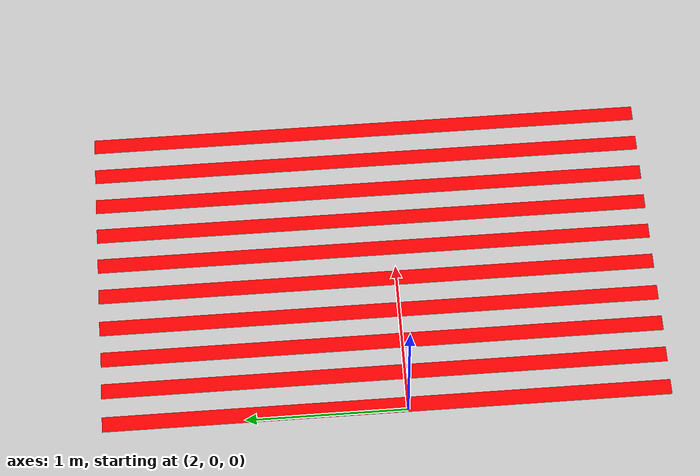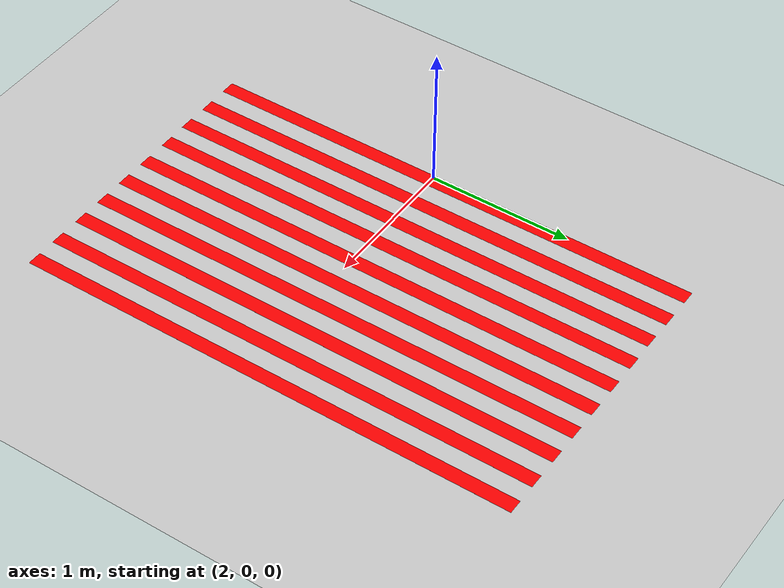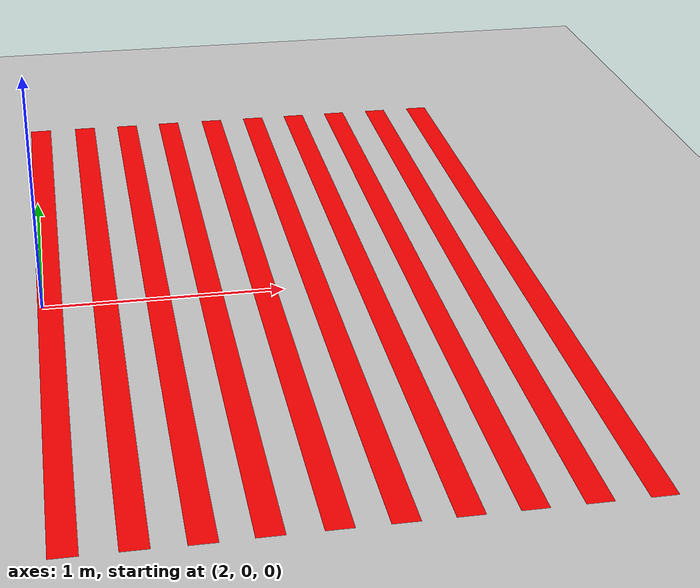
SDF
<sdf version="1.6">
 <world name="default">
  <light name="sun" type="directional">
   <pose>0 0 10 0 -0 0</pose>
   <diffuse>0.8 0.8 0.8 1</diffuse>
   <specular>0.2 0.2 0.2 1</specular>
   <attenuation>
    <range>1000</range>
    <constant>0.9</constant>
    <linear>0.01</linear>
    <quadratic>0.001</quadratic>
   </attenuation>
   <direction>-0.5 0.1 -0.9</direction>
  </light>
  <model name="ground_plane">
   <static>1</static>
   <link name="link">
    <collision name="collision">
     <geometry><plane><normal>0 0 1</normal><size>100 100</size></plane></geometry>
     <surface>
      <contact><collide_bitmask>65535</collide_bitmask></contact>
      <friction><ode><mu>100</mu><mu2>50</mu2></ode></friction>
     </surface>
    </collision>
    <visual name="visual">
     <cast_shadows>0</cast_shadows>
     <geometry><plane><normal>0 0 1</normal><size>100 100</size></plane></geometry>
     <material>
      <script><uri>file://media/materials/scripts/gazebo.material</uri><name>Gazebo/Grey</name></script>
     </material>
    </visual>
   </link>
  </model>
  <gravity>0 0 -9.8</gravity>
  <magnetic_field>6e-06 2.3e-05 -4.2e-05</magnetic_field>
  <atmosphere type="adiabatic"/>
  <physics name="default_physics" default="0" type="ode">
   <max_step_size>0.001</max_step_size>
   <real_time_factor>1</real_time_factor>
   <real_time_update_rate>1000</real_time_update_rate>
  </physics>
  <scene><ambient>0.4 0.4 0.4 1</ambient><background>0.7 0.7 0.7 1</background><shadows>1</shadows></scene>
  <audio><device>default</device></audio>
  <spherical_coordinates>
   <surface_model>EARTH_WGS84</surface_model>
   <latitude_deg>0</latitude_deg>
   <longitude_deg>0</longitude_deg>
   <elevation>0</elevation>
   <heading_deg>0</heading_deg>
  </spherical_coordinates>
  <model name="Blocks_red_22">
   <link name="link_0">
    <inertial>
     <mass>21</mass>
     <inertia><ixx>21.4377</ixx><ixy>0</ixy><ixz>0</ixz><iyy>0.017675</iyy><iyz>0</iyz><izz>21.455</izz></inertia>
    </inertial>
    <pose>0.88666 -0 0 0 -0 0</pose>
    <visual name="visual">
     <geometry><box><size>0.1 3.5 1e-05</size></box></geometry>
     <material>
      <lighting>1</lighting>
      <script><uri>file://media/materials/scripts/gazebo.material</uri><name>Gazebo/Grey</name></script>
      <shader type="vertex"><normal_map>__default__</normal_map></shader>
      <ambient>0.3 0.3 0.3 1</ambient>
      <diffuse>1 0 0 1</diffuse>
      <specular>0.01 0.01 0.01 1</specular>
      <emissive>0 0 0 1</emissive>
     </material>
    </visual>
    <collision name="collision">
     <geometry><box><size>0.1 3.5 0.01</size></box></geometry>
     <surface>
      <friction>
       <ode><mu>100</mu><mu2>100</mu2><fdir1>0 0 0</fdir1><slip1>0</slip1><slip2>0</slip2></ode>
       <torsional>
        <coefficient>1</coefficient>
        <patch_radius>0</patch_radius>
        <surface_radius>0</surface_radius>
        <use_patch_radius>1</use_patch_radius>
        <ode><slip>0</slip></ode>
       </torsional>
      </friction>
      <bounce><restitution_coefficient>0</restitution_coefficient><threshold>1e+06</threshold></bounce>
      <contact>
       <collide_without_contact>0</collide_without_contact>
       <collide_without_contact_bitmask>1</collide_without_contact_bitmask>
       <collide_bitmask>1</collide_bitmask>
       <ode>
        <soft_cfm>0</soft_cfm>
        <soft_erp>0.2</soft_erp>
        <kp>1e+13</kp>
        <kd>1</kd>
        <max_vel>0.01</max_vel>
        <min_depth>0</min_depth>
       </ode>
       <bullet>
        <split_impulse>1</split_impulse>
        <split_impulse_penetration_threshold>-0.01</split_impulse_penetration_threshold>
        <soft_cfm>0</soft_cfm>
        <soft_erp>0.2</soft_erp>
        <kp>1e+13</kp>
        <kd>1</kd>
       </bullet>
      </contact>
     </surface>
    </collision>
   </link>
   <link name="link_0_clone">
    <inertial>
     <mass>21</mass>
     <inertia><ixx>21.4377</ixx><ixy>0</ixy><ixz>0</ixz><iyy>0.017675</iyy><iyz>0</iyz><izz>21.455</izz></inertia>
    </inertial>
    <pose>1.76371 -0 0 0 -0 0</pose>
    <visual name="visual">
     <geometry><box><size>0.1 3.5 1e-05</size></box></geometry>
     <material>
      <lighting>1</lighting>
      <script><uri>file://media/materials/scripts/gazebo.material</uri><name>Gazebo/Grey</name></script>
      <shader type="vertex"><normal_map>__default__</normal_map></shader>
      <ambient>0.3 0.3 0.3 1</ambient>
      <diffuse>1 0 0 1</diffuse>
      <specular>0.01 0.01 0.01 1</specular>
      <emissive>0 0 0 1</emissive>
     </material>
    </visual>
    <collision name="collision">
     <geometry><box><size>0.1 3.5 0.01</size></box></geometry>
     <surface>
      <friction>
       <ode><mu>100</mu><mu2>100</mu2><fdir1>0 0 0</fdir1><slip1>0</slip1><slip2>0</slip2></ode>
       <torsional>
        <coefficient>1</coefficient>
        <patch_radius>0</patch_radius>
        <surface_radius>0</surface_radius>
        <use_patch_radius>1</use_patch_radius>
        <ode><slip>0</slip></ode>
       </torsional>
      </friction>
      <bounce><restitution_coefficient>0</restitution_coefficient><threshold>1e+06</threshold></bounce>
      <contact>
       <collide_without_contact>0</collide_without_contact>
       <collide_without_contact_bitmask>1</collide_without_contact_bitmask>
       <collide_bitmask>1</collide_bitmask>
       <ode>
        <soft_cfm>0</soft_cfm>
        <soft_erp>0.2</soft_erp>
        <kp>1e+13</kp>
        <kd>1</kd>
        <max_vel>0.01</max_vel>
        <min_depth>0</min_depth>
       </ode>
       <bullet>
        <split_impulse>1</split_impulse>
        <split_impulse_penetration_threshold>-0.01</split_impulse_penetration_threshold>
        <soft_cfm>0</soft_cfm>
        <soft_erp>0.2</soft_erp>
        <kp>1e+13</kp>
        <kd>1</kd>
       </bullet>
      </contact>
     </surface>
    </collision>
   </link>
   <link name="link_0_clone_0">
    <inertial>
     <mass>21</mass>
     <inertia><ixx>21.4377</ixx><ixy>0</ixy><ixz>0</ixz><iyy>0.017675</iyy><iyz>0</iyz><izz>21.455</izz></inertia>
    </inertial>
    <pose>1.5409 -0 0 0 -0 0</pose>
    <visual name="visual">
     <geometry><box><size>0.1 3.5 1e-05</size></box></geometry>
     <material>
      <lighting>1</lighting>
      <script><uri>file://media/materials/scripts/gazebo.material</uri><name>Gazebo/Grey</name></script>
      <shader type="vertex"><normal_map>__default__</normal_map></shader>
      <ambient>0.3 0.3 0.3 1</ambient>
      <diffuse>1 0 0 1</diffuse>
      <specular>0.01 0.01 0.01 1</specular>
      <emissive>0 0 0 1</emissive>
     </material>
    </visual>
    <collision name="collision">
     <geometry><box><size>0.1 3.5 0.01</size></box></geometry>
     <surface>
      <friction>
       <ode><mu>100</mu><mu2>100</mu2><fdir1>0 0 0</fdir1><slip1>0</slip1><slip2>0</slip2></ode>
       <torsional>
        <coefficient>1</coefficient>
        <patch_radius>0</patch_radius>
        <surface_radius>0</surface_radius>
        <use_patch_radius>1</use_patch_radius>
        <ode><slip>0</slip></ode>
       </torsional>
      </friction>
      <bounce><restitution_coefficient>0</restitution_coefficient><threshold>1e+06</threshold></bounce>
      <contact>
       <collide_without_contact>0</collide_without_contact>
       <collide_without_contact_bitmask>1</collide_without_contact_bitmask>
       <collide_bitmask>1</collide_bitmask>
       <ode>
        <soft_cfm>0</soft_cfm>
        <soft_erp>0.2</soft_erp>
        <kp>1e+13</kp>
        <kd>1</kd>
        <max_vel>0.01</max_vel>
        <min_depth>0</min_depth>
       </ode>
       <bullet>
        <split_impulse>1</split_impulse>
        <split_impulse_penetration_threshold>-0.01</split_impulse_penetration_threshold>
        <soft_cfm>0</soft_cfm>
        <soft_erp>0.2</soft_erp>
        <kp>1e+13</kp>
        <kd>1</kd>
       </bullet>
      </contact>
     </surface>
    </collision>
   </link>
   <link name="link_0_clone_1">
    <inertial>
     <mass>21</mass>
     <inertia><ixx>21.4377</ixx><ixy>0</ixy><ixz>0</ixz><iyy>0.017675</iyy><iyz>0</iyz><izz>21.455</izz></inertia>
    </inertial>
    <visual name="visual">
     <geometry><box><size>0.1 3.5 1e-05</size></box></geometry>
     <material>
      <lighting>1</lighting>
      <script><uri>file://media/materials/scripts/gazebo.material</uri><name>Gazebo/Grey</name></script>
      <shader type="vertex"><normal_map>__default__</normal_map></shader>
      <ambient>0.3 0.3 0.3 1</ambient>
      <diffuse>1 0 0 1</diffuse>
      <specular>0.01 0.01 0.01 1</specular>
      <emissive>0 0 0 1</emissive>
     </material>
    </visual>
    <collision name="collision">
     <geometry><box><size>0.1 3.5 0.01</size></box></geometry>
     <surface>
      <friction>
       <ode><mu>100</mu><mu2>100</mu2><fdir1>0 0 0</fdir1><slip1>0</slip1><slip2>0</slip2></ode>
       <torsional>
        <coefficient>1</coefficient>
        <patch_radius>0</patch_radius>
        <surface_radius>0</surface_radius>
        <use_patch_radius>1</use_patch_radius>
        <ode><slip>0</slip></ode>
       </torsional>
      </friction>
      <bounce><restitution_coefficient>0</restitution_coefficient><threshold>1e+06</threshold></bounce>
      <contact>
       <collide_without_contact>0</collide_without_contact>
       <collide_without_contact_bitmask>1</collide_without_contact_bitmask>
       <collide_bitmask>1</collide_bitmask>
       <ode>
        <soft_cfm>0</soft_cfm>
        <soft_erp>0.2</soft_erp>
        <kp>1e+13</kp>
        <kd>1</kd>
        <max_vel>0.01</max_vel>
        <min_depth>0</min_depth>
       </ode>
       <bullet>
        <split_impulse>1</split_impulse>
        <split_impulse_penetration_threshold>-0.01</split_impulse_penetration_threshold>
        <soft_cfm>0</soft_cfm>
        <soft_erp>0.2</soft_erp>
        <kp>1e+13</kp>
        <kd>1</kd>
       </bullet>
      </contact>
     </surface>
    </collision>
   </link>
   <link name="link_0_clone_2">
    <inertial>
     <mass>21</mass>
     <inertia><ixx>21.4377</ixx><ixy>0</ixy><ixz>0</ixz><iyy>0.017675</iyy><iyz>0</iyz><izz>21.455</izz></inertia>
    </inertial>
    <pose>0.66047 -0 0 0 -0 0</pose>
    <visual name="visual">
     <geometry><box><size>0.1 3.5 1e-05</size></box></geometry>
     <material>
      <lighting>1</lighting>
      <script><uri>file://media/materials/scripts/gazebo.material</uri><name>Gazebo/Grey</name></script>
      <shader type="vertex"><normal_map>__default__</normal_map></shader>
      <ambient>0.3 0.3 0.3 1</ambient>
      <diffuse>1 0 0 1</diffuse>
      <specular>0.01 0.01 0.01 1</specular>
      <emissive>0 0 0 1</emissive>
     </material>
    </visual>
    <collision name="collision">
     <geometry><box><size>0.1 3.5 0.01</size></box></geometry>
     <surface>
      <friction>
       <ode><mu>100</mu><mu2>100</mu2><fdir1>0 0 0</fdir1><slip1>0</slip1><slip2>0</slip2></ode>
       <torsional>
        <coefficient>1</coefficient>
        <patch_radius>0</patch_radius>
        <surface_radius>0</surface_radius>
        <use_patch_radius>1</use_patch_radius>
        <ode><slip>0</slip></ode>
       </torsional>
      </friction>
      <bounce><restitution_coefficient>0</restitution_coefficient><threshold>1e+06</threshold></bounce>
      <contact>
       <collide_without_contact>0</collide_without_contact>
       <collide_without_contact_bitmask>1</collide_without_contact_bitmask>
       <collide_bitmask>1</collide_bitmask>
       <ode>
        <soft_cfm>0</soft_cfm>
        <soft_erp>0.2</soft_erp>
        <kp>1e+13</kp>
        <kd>1</kd>
        <max_vel>0.01</max_vel>
        <min_depth>0</min_depth>
       </ode>
       <bullet>
        <split_impulse>1</split_impulse>
        <split_impulse_penetration_threshold>-0.01</split_impulse_penetration_threshold>
        <soft_cfm>0</soft_cfm>
        <soft_erp>0.2</soft_erp>
        <kp>1e+13</kp>
        <kd>1</kd>
       </bullet>
      </contact>
     </surface>
    </collision>
   </link>
   <link name="link_0_clone_3">
    <inertial>
     <mass>21</mass>
     <inertia><ixx>21.4377</ixx><ixy>0</ixy><ixz>0</ixz><iyy>0.017675</iyy><iyz>0</iyz><izz>21.455</izz></inertia>
    </inertial>
    <pose>1.98845 -0 0 0 -0 0</pose>
    <visual name="visual">
     <geometry><box><size>0.1 3.5 1e-05</size></box></geometry>
     <material>
      <lighting>1</lighting>
      <script><uri>file://media/materials/scripts/gazebo.material</uri><name>Gazebo/Grey</name></script>
      <shader type="vertex"><normal_map>__default__</normal_map></shader>
      <ambient>0.3 0.3 0.3 1</ambient>
      <diffuse>1 0 0 1</diffuse>
      <specular>0.01 0.01 0.01 1</specular>
      <emissive>0 0 0 1</emissive>
     </material>
    </visual>
    <collision name="collision">
     <geometry><box><size>0.1 3.5 0.01</size></box></geometry>
     <surface>
      <friction>
       <ode><mu>100</mu><mu2>100</mu2><fdir1>0 0 0</fdir1><slip1>0</slip1><slip2>0</slip2></ode>
       <torsional>
        <coefficient>1</coefficient>
        <patch_radius>0</patch_radius>
        <surface_radius>0</surface_radius>
        <use_patch_radius>1</use_patch_radius>
        <ode><slip>0</slip></ode>
       </torsional>
      </friction>
      <bounce><restitution_coefficient>0</restitution_coefficient><threshold>1e+06</threshold></bounce>
      <contact>
       <collide_without_contact>0</collide_without_contact>
       <collide_without_contact_bitmask>1</collide_without_contact_bitmask>
       <collide_bitmask>1</collide_bitmask>
       <ode>
        <soft_cfm>0</soft_cfm>
        <soft_erp>0.2</soft_erp>
        <kp>1e+13</kp>
        <kd>1</kd>
        <max_vel>0.01</max_vel>
        <min_depth>0</min_depth>
       </ode>
       <bullet>
        <split_impulse>1</split_impulse>
        <split_impulse_penetration_threshold>-0.01</split_impulse_penetration_threshold>
        <soft_cfm>0</soft_cfm>
        <soft_erp>0.2</soft_erp>
        <kp>1e+13</kp>
        <kd>1</kd>
       </bullet>
      </contact>
     </surface>
    </collision>
   </link>
   <link name="link_0_clone_4">
    <inertial>
     <mass>21</mass>
     <inertia><ixx>21.4377</ixx><ixy>0</ixy><ixz>0</ixz><iyy>0.017675</iyy><iyz>0</iyz><izz>21.455</izz></inertia>
    </inertial>
    <pose>0.22548 -1.6e-05 0 0 -0 0</pose>
    <visual name="visual">
     <geometry><box><size>0.1 3.5 1e-05</size></box></geometry>
     <material>
      <lighting>1</lighting>
      <script><uri>file://media/materials/scripts/gazebo.material</uri><name>Gazebo/Grey</name></script>
      <shader type="vertex"><normal_map>__default__</normal_map></shader>
      <ambient>0.3 0.3 0.3 1</ambient>
      <diffuse>1 0 0 1</diffuse>
      <specular>0.01 0.01 0.01 1</specular>
      <emissive>0 0 0 1</emissive>
     </material>
    </visual>
    <collision name="collision">
     <geometry><box><size>0.1 3.5 0.01</size></box></geometry>
     <surface>
      <friction>
       <ode><mu>100</mu><mu2>100</mu2><fdir1>0 0 0</fdir1><slip1>0</slip1><slip2>0</slip2></ode>
       <torsional>
        <coefficient>1</coefficient>
        <patch_radius>0</patch_radius>
        <surface_radius>0</surface_radius>
        <use_patch_radius>1</use_patch_radius>
        <ode><slip>0</slip></ode>
       </torsional>
      </friction>
      <bounce><restitution_coefficient>0</restitution_coefficient><threshold>1e+06</threshold></bounce>
      <contact>
       <collide_without_contact>0</collide_without_contact>
       <collide_without_contact_bitmask>1</collide_without_contact_bitmask>
       <collide_bitmask>1</collide_bitmask>
       <ode>
        <soft_cfm>0</soft_cfm>
        <soft_erp>0.2</soft_erp>
        <kp>1e+13</kp>
        <kd>1</kd>
        <max_vel>0.01</max_vel>
        <min_depth>0</min_depth>
       </ode>
       <bullet>
        <split_impulse>1</split_impulse>
        <split_impulse_penetration_threshold>-0.01</split_impulse_penetration_threshold>
        <soft_cfm>0</soft_cfm>
        <soft_erp>0.2</soft_erp>
        <kp>1e+13</kp>
        <kd>1</kd>
       </bullet>
      </contact>
     </surface>
    </collision>
   </link>
   <link name="link_0_clone_5">
    <inertial>
     <mass>21</mass>
     <inertia><ixx>21.4377</ixx><ixy>0</ixy><ixz>0</ixz><iyy>0.017675</iyy><iyz>0</iyz><izz>21.455</izz></inertia>
    </inertial>
    <pose>0.443466 -0.003111 0 0 -0 0</pose>
    <visual name="visual">
     <geometry><box><size>0.1 3.5 1e-05</size></box></geometry>
     <material>
      <lighting>1</lighting>
      <script><uri>file://media/materials/scripts/gazebo.material</uri><name>Gazebo/Grey</name></script>
      <shader type="vertex"><normal_map>__default__</normal_map></shader>
      <ambient>0.3 0.3 0.3 1</ambient>
      <diffuse>1 0 0 1</diffuse>
      <specular>0.01 0.01 0.01 1</specular>
      <emissive>0 0 0 1</emissive>
     </material>
    </visual>
    <collision name="collision">
     <geometry><box><size>0.1 3.5 0.01</size></box></geometry>
     <surface>
      <friction>
       <ode><mu>100</mu><mu2>100</mu2><fdir1>0 0 0</fdir1><slip1>0</slip1><slip2>0</slip2></ode>
       <torsional>
        <coefficient>1</coefficient>
        <patch_radius>0</patch_radius>
        <surface_radius>0</surface_radius>
        <use_patch_radius>1</use_patch_radius>
        <ode><slip>0</slip></ode>
       </torsional>
      </friction>
      <bounce><restitution_coefficient>0</restitution_coefficient><threshold>1e+06</threshold></bounce>
      <contact>
       <collide_without_contact>0</collide_without_contact>
       <collide_without_contact_bitmask>1</collide_without_contact_bitmask>
       <collide_bitmask>1</collide_bitmask>
       <ode>
        <soft_cfm>0</soft_cfm>
        <soft_erp>0.2</soft_erp>
        <kp>1e+13</kp>
        <kd>1</kd>
        <max_vel>0.01</max_vel>
        <min_depth>0</min_depth>
       </ode>
       <bullet>
        <split_impulse>1</split_impulse>
        <split_impulse_penetration_threshold>-0.01</split_impulse_penetration_threshold>
        <soft_cfm>0</soft_cfm>
        <soft_erp>0.2</soft_erp>
        <kp>1e+13</kp>
        <kd>1</kd>
       </bullet>
      </contact>
     </surface>
    </collision>
   </link>
   <link name="link_0_clone_6">
    <inertial>
     <mass>21</mass>
     <inertia><ixx>21.4377</ixx><ixy>0</ixy><ixz>0</ixz><iyy>0.017675</iyy><iyz>0</iyz><izz>21.455</izz></inertia>
    </inertial>
    <pose>1.32332 -0 0 0 -0 0</pose>
    <visual name="visual">
     <geometry><box><size>0.1 3.5 1e-05</size></box></geometry>
     <material>
      <lighting>1</lighting>
      <script><uri>file://media/materials/scripts/gazebo.material</uri><name>Gazebo/Grey</name></script>
      <shader type="vertex"><normal_map>__default__</normal_map></shader>
      <ambient>0.3 0.3 0.3 1</ambient>
      <diffuse>1 0 0 1</diffuse>
      <specular>0.01 0.01 0.01 1</specular>
      <emissive>0 0 0 1</emissive>
     </material>
    </visual>
    <collision name="collision">
     <geometry><box><size>0.1 3.5 0.01</size></box></geometry>
     <surface>
      <friction>
       <ode><mu>100</mu><mu2>100</mu2><fdir1>0 0 0</fdir1><slip1>0</slip1><slip2>0</slip2></ode>
       <torsional>
        <coefficient>1</coefficient>
        <patch_radius>0</patch_radius>
        <surface_radius>0</surface_radius>
        <use_patch_radius>1</use_patch_radius>
        <ode><slip>0</slip></ode>
       </torsional>
      </friction>
      <bounce><restitution_coefficient>0</restitution_coefficient><threshold>1e+06</threshold></bounce>
      <contact>
       <collide_without_contact>0</collide_without_contact>
       <collide_without_contact_bitmask>1</collide_without_contact_bitmask>
       <collide_bitmask>1</collide_bitmask>
       <ode>
        <soft_cfm>0</soft_cfm>
        <soft_erp>0.2</soft_erp>
        <kp>1e+13</kp>
        <kd>1</kd>
        <max_vel>0.01</max_vel>
        <min_depth>0</min_depth>
       </ode>
       <bullet>
        <split_impulse>1</split_impulse>
        <split_impulse_penetration_threshold>-0.01</split_impulse_penetration_threshold>
        <soft_cfm>0</soft_cfm>
        <soft_erp>0.2</soft_erp>
        <kp>1e+13</kp>
        <kd>1</kd>
       </bullet>
      </contact>
     </surface>
    </collision>
   </link>
   <link name="link_0_clone_7">
    <inertial>
     <mass>21</mass>
     <inertia><ixx>21.4377</ixx><ixy>0</ixy><ixz>0</ixz><iyy>0.017675</iyy><iyz>0</iyz><izz>21.455</izz></inertia>
    </inertial>
    <pose>1.1058 -0.000376 0 0 -0 0</pose>
    <visual name="visual">
     <geometry><box><size>0.1 3.5 1e-05</size></box></geometry>
     <material>
      <lighting>1</lighting>
      <script><uri>file://media/materials/scripts/gazebo.material</uri><name>Gazebo/Grey</name></script>
      <shader type="vertex"><normal_map>__default__</normal_map></shader>
      <ambient>0.3 0.3 0.3 1</ambient>
      <diffuse>1 0 0 1</diffuse>
      <specular>0.01 0.01 0.01 1</specular>
      <emissive>0 0 0 1</emissive>
     </material>
    </visual>
    <collision name="collision">
     <geometry><box><size>0.1 3.5 0.01</size></box></geometry>
     <surface>
      <friction>
       <ode><mu>100</mu><mu2>100</mu2><fdir1>0 0 0</fdir1><slip1>0</slip1><slip2>0</slip2></ode>
       <torsional>
        <coefficient>1</coefficient>
        <patch_radius>0</patch_radius>
        <surface_radius>0</surface_radius>
        <use_patch_radius>1</use_patch_radius>
        <ode><slip>0</slip></ode>
       </torsional>
      </friction>
      <bounce><restitution_coefficient>0</restitution_coefficient><threshold>1e+06</threshold></bounce>
      <contact>
       <collide_without_contact>0</collide_without_contact>
       <collide_without_contact_bitmask>1</collide_without_contact_bitmask>
       <collide_bitmask>1</collide_bitmask>
       <ode>
        <soft_cfm>0</soft_cfm>
        <soft_erp>0.2</soft_erp>
        <kp>1e+13</kp>
        <kd>1</kd>
        <max_vel>0.01</max_vel>
        <min_depth>0</min_depth>
       </ode>
       <bullet>
        <split_impulse>1</split_impulse>
        <split_impulse_penetration_threshold>-0.01</split_impulse_penetration_threshold>
        <soft_cfm>0</soft_cfm>
        <soft_erp>0.2</soft_erp>
        <kp>1e+13</kp>
        <kd>1</kd>
       </bullet>
      </contact>
     </surface>
    </collision>
   </link>
   <static>0</static>
   <pose>2.03186 0.123722 0.005 0 -0 0</pose>
  </model>
 </world>
</sdf>
